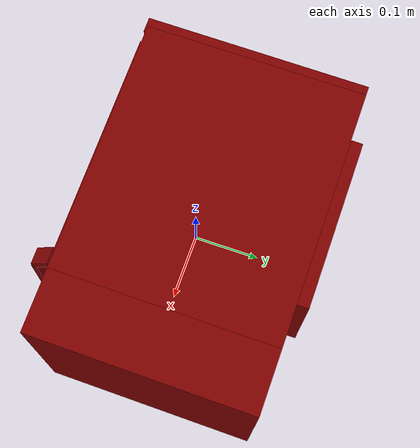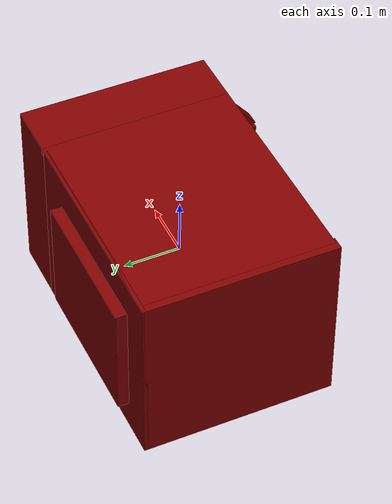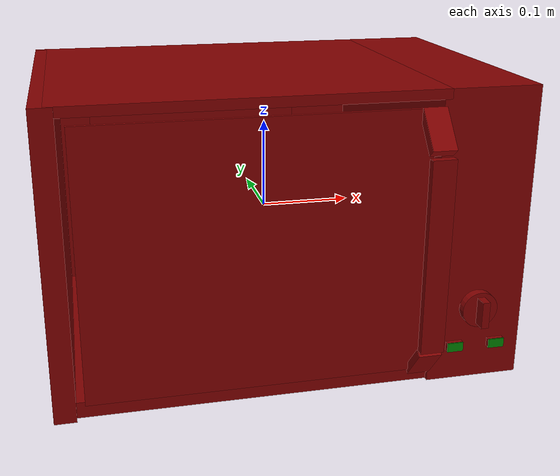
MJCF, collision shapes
<?xml version='1.0' encoding='UTF-8'?>
<mujoco model="model">
  <option timestep="0.002" gravity="0.0 0.0 -9.81"/>
  <compiler angle="radian"/>
  <asset>
    <mesh file="visuals/door.obj" name="door_vis"/>
    <mesh file="visuals/door_Clear.obj" name="door_Clear_vis"/>
    <mesh file="visuals/Body001.obj" name="Body001_vis"/>
    <mesh file="visuals/Button001.obj" name="Button001_vis"/>
    <mesh file="visuals/Button002.obj" name="Button002_vis"/>
    <mesh file="visuals/Disc001.obj" name="Disc001_vis"/>
    <mesh file="visuals/Knob001.obj" name="Knob001_vis"/>
    <texture file="visuals/T_BC001.png" name="Body001_material" type="2d"/>
    <material name="Body001_material" rgba="1 1 1 1.0" texture="Body001_material" shininess="0.5873101949691772" specular="2"/>
    <texture file="visuals/T_BC001.png" name="door_material" type="2d"/>
    <material name="door_material" rgba="1 1 1 1.0" texture="door_material" shininess="0.5873101949691772" specular="2"/>
    <material name="door_Clear_material" rgba="0.04224399849772453 0.04224399849772453 0.04224399849772453 0.8999999761581421" shininess="0.5" specular="1"/>
    <texture file="visuals/T_BC001.png" name="Button001_material" type="2d"/>
    <material name="Button001_material" rgba="1 1 1 1.0" texture="Button001_material" shininess="0.5873101949691772" specular="1"/>
    <texture file="visuals/T_BC001.png" name="Button002_material" type="2d"/>
    <material name="Button002_material" rgba="1 1 1 1.0" texture="Button002_material" shininess="0.5873101949691772" specular="1"/>
    <texture file="visuals/T_BC001.png" name="Disc001_material" type="2d"/>
    <material name="Disc001_material" rgba="1 1 1 1.0" texture="Disc001_material" shininess="0.5873101949691772" specular="3"/>
    <texture file="visuals/T_BC001.png" name="Knob001_material" type="2d"/>
    <material name="Knob001_material" rgba="1 1 1 1.0" texture="Knob001_material" shininess="0.5873101949691772" specular="1"/>
  </asset>
  <default>
    <default class="visual">
      <geom conaffinity="0" contype="0" group="1" type="mesh"/>
    </default>
    <default class="collision">
      <geom group="0" rgba="0.5 0 0 0.5"/>
    </default>
    <default class="spawn">
      <geom group="0" rgba="1 1 1 0.5" contype="0" conaffinity="0"/>
      <site group="0" rgba="1 1 1 0.5"/>
    </default>
    <default class="region">
      <geom group="1" conaffinity="0" contype="0" rgba="0 1 0 0"/>
    </default>
  </default>
  <worldbody>
    <body>
      <body name="object">
        <geom class="collision" type="cylinder" pos="-0.03615223 0.01071398 -0.13910060" size="0.10410761833190918 0.001198530662804842" quat="1.0 0.0 0.0 0.0" name="tray" rgba="0 1 0 0.5"/>
        <geom class="collision" type="box" pos="0.17483735 -0.16996883 -0.12013659" size="0.0088576078414917 0.0005799331120215356 0.005078091751784086" quat="1.0 0.0 0.0 0.0" name="start_button" rgba="0.0 0.5 0 0.5"/>
        <geom class="collision" type="box" pos="0.22248438 -0.16996883 -0.12013659" size="0.00885758362710476 0.0005799314822070301 0.005078091751784086" quat="1.0 0.0 0.0 0.0" name="stop_button" rgba="0.0 0.5 0 0.5"/>
        <geom mesh="Body001_vis" type="mesh" solimp="0.998 0.998 0.001" solref="0.001 1" friction="0.95 0.3 0.1" class="visual" material="Body001_material"/>
        <geom class="collision" type="box" pos="-0.24096069 0.00600094 0.00000028" size="0.011550054885447025 0.16924265027046204 0.16243954002857208" quat="1.0 0.0 0.0 0.0"/>
        <geom class="collision" type="box" pos="0.20031831 0.00871939 0.00000028" size="0.052180953323841095 0.16924265027046204 0.1624395102262497" quat="1.0 0.0 0.0 0.0"/>
        <geom class="collision" type="box" pos="-0.04141608 0.01124469 -0.15360054" size="0.19762252271175385 0.16671735048294067 0.008838735520839691" quat="1.0 0.0 0.0 0.0"/>
        <geom class="collision" type="box" pos="-0.04141608 0.00871939 0.15704207" size="0.19763053953647614 0.1692495048046112 0.005398265086114407" quat="1.0 0.0 0.0 0.0"/>
        <geom class="collision" type="box" pos="-0.05820107 0.18411710 -0.00325730" size="0.13412368297576904 0.013733087107539177 0.10394680500030518" quat="1.0 0.0 0.0 0.0"/>
        <geom class="collision" type="box" pos="-0.05186822 0.17463176 0.00000049" size="0.20064249634742737 0.0033645974472165108 0.16243976354599" quat="1.0 0.0 0.0 0.0"/>
        <body name="door">
          <joint axis="0.0 0.0 1.0" pos="-0.24267742 -0.16072838 -0.00065811" limited="true" name="microjoint" range="-1.5707963267948966 0.0" type="hinge" damping="1" frictionloss="1" armature=".01" stiffness="0.05"/>
          <geom mesh="door_vis" type="mesh" solimp="0.998 0.998 0.001" solref="0.001 1" friction="0.95 0.3 0.1" class="visual" material="door_material"/>
          <geom class="collision" type="box" pos="-0.04121793 -0.16428117 0.00104381" size="0.17912612855434418 0.0020712907426059246 0.14390848577022552" quat="1.0 0.0 0.0 0.0" name="door_main"/>
          <geom class="collision" type="box" pos="-0.04019934 -0.15466472 -0.00148154" size="0.1582401692867279 0.0020251176320016384 0.11149369180202484" quat="1.0 0.0 0.0 0.0"/>
          <geom class="collision" type="box" pos="0.13513076 -0.19472898 -0.00321870" size="0.012677142396569252 0.0042665922082960606 0.104315847158432" quat="1.0 0.0 0.0 0.0" name="door_handle_main"/>
          <geom class="collision" type="box" pos="0.13513076 -0.17821397 0.12440506" size="0.012677142396569252 0.00585625134408474 0.023739872500300407" quat="0.9399288296699524 -0.34137049317359924 2.8638572721555794e-18 1.0850559262752357e-18"/>
          <geom class="collision" type="box" pos="0.13488576 -0.17768816 -0.12730666" size="0.012432144954800606 0.004518064204603434 0.023084383457899094" quat="0.941739022731781 0.33634448051452637 4.691098418104605e-18 -1.796101931789467e-18"/>
          <body name="door_Clear">
            <geom mesh="door_Clear_vis" type="mesh" solimp="0.998 0.998 0.001" solref="0.001 1" friction="0.95 0.3 0.1" class="visual" material="door_Clear_material"/>
            <geom class="collision" type="box" pos="-0.04019934 -0.15466472 -0.00148154" size="0.1582401692867279 0.0020251176320016384 0.11149369180202484" quat="1.0 0.0 0.0 0.0"/>
          </body>
        </body>
        <body name="Button001">
          <joint axis="0.0 1.0 0.0" pos="0.17493886 -0.16539864 -0.12007669" limited="true" name="Button001_joint" range="0.0 0.003" type="slide" damping="1" frictionloss="1" armature=".01" stiffness="0.05"/>
          <geom mesh="Button001_vis" type="mesh" solimp="0.998 0.998 0.001" solref="0.001 1" friction="0.95 0.3 0.1" class="visual" material="Button001_material"/>
          <geom class="collision" type="box" pos="0.17483735 -0.16632901 -0.12013659" size="0.008857536129653454 0.002287296811118722 0.005078091751784086" quat="1.0 0.0 0.0 0.0"/>
        </body>
        <body name="Button002">
          <joint axis="0.0 1.0 0.0" pos="0.22241950 -0.16539864 -0.12007669" limited="true" name="Button002_joint" range="0.0 0.003" type="slide" damping="1" frictionloss="1" armature=".01" stiffness="0.05"/>
          <geom mesh="Button002_vis" type="mesh" solimp="0.998 0.998 0.001" solref="0.001 1" friction="0.95 0.3 0.1" class="visual" material="Button002_material"/>
          <geom class="collision" type="box" pos="0.22248438 -0.16632901 -0.12013659" size="0.008857560344040394 0.0022873012349009514 0.005078091751784086" quat="1.0 0.0 0.0 0.0"/>
        </body>
        <body name="Disc001">
          <joint axis="0.0 0.0 1.0" pos="-0.03615224 0.01071397 -0.14126298" limited="false" name="Disc001_joint" range="0 360" type="hinge" damping="1" frictionloss="1" armature=".01" stiffness="0.05"/>
          <geom mesh="Disc001_vis" type="mesh" solimp="0.998 0.998 0.001" solref="0.001 1" friction="0.95 0.3 0.1" class="visual" material="Disc001_material"/>
          <geom class="collision" type="cylinder" pos="-0.03615223 0.01071398 -0.14256822" size="0.10410761833190918 0.0018565341597422957" quat="1.0 0.0 0.0 0.0"/>
        </body>
        <body name="Knob001">
          <joint axis="0.0 1.0 0.0" pos="0.19801226 -0.17630480 -0.07596762" limited="true" name="Knob001_joint" range="0.0 3.9269908169872414" type="hinge" damping="0.05" armature="0.5" frictionloss="0.75"/>
          <geom mesh="Knob001_vis" type="mesh" solimp="0.998 0.998 0.001" solref="0.001 1" friction="0.95 0.3 0.1" class="visual" material="Knob001_material"/>
          <geom class="collision" type="cylinder" pos="0.19794825 -0.16970752 -0.07587153" size="0.01971447467803955 0.004739411640912294" quat="0.7071067094802856 0.70710688829422 0.0 0.0" friction="100 0.5 0.01"/>
          <geom class="collision" type="box" pos="0.19794226 -0.17970584 -0.07618757" size="0.004080881364643574 0.008663568645715714 0.014815111644566059" quat="1.0 0.0 0.0 0.0" friction="100 0.5 0.01"/>
        </body>
        <geom class="region" name="reg_int" type="box" pos="-0.040662155000000005 0.001241954999999989 0.003931174999999995" size="0.188276795 0.166753705 0.142833225"/>
        <geom class="region" name="reg_main" type="box" pos="0.0 0.01547549999999999 0.0" size="0.25350208 0.18337489 0.16343984"/>
      <geom class="region" name="reg_tray" type="cylinder" pos="-0.03615223 0.01071398 0.004431165331402434" size="0.10410761833190918 0.1413332346685976"/></body>
    </body>
  </worldbody>
  <actuator>
    <motor name="microjoint_actuator" joint="microjoint" gear="10"/>
    <motor name="Button001_joint_actuator" joint="Button001_joint" gear="0.5"/>
    <motor name="Button002_joint_actuator" joint="Button002_joint" gear="0.5"/>
    <motor name="Disc001_joint_actuator" joint="Disc001_joint" gear="20"/>
    <motor name="Knob001_joint_actuator" joint="Knob001_joint" gear="10"/>
  </actuator>
</mujoco>
